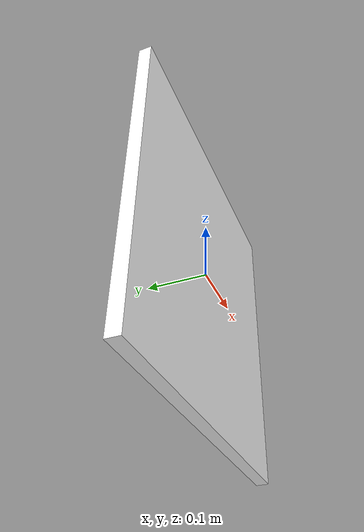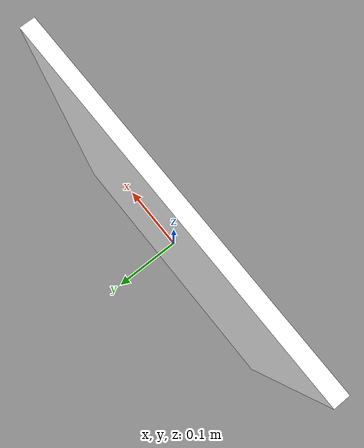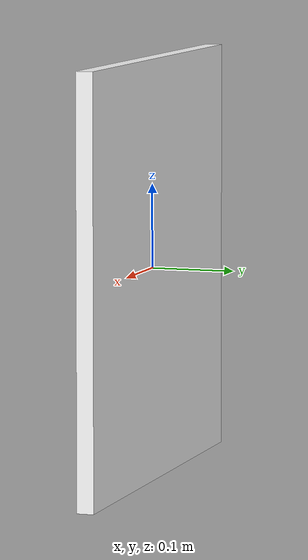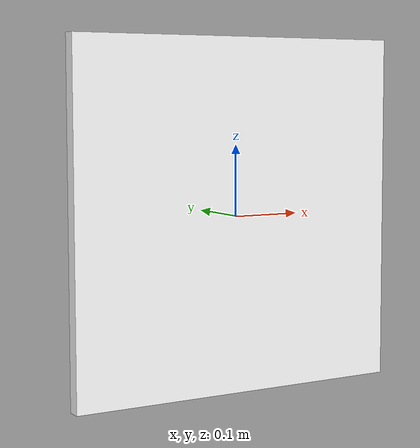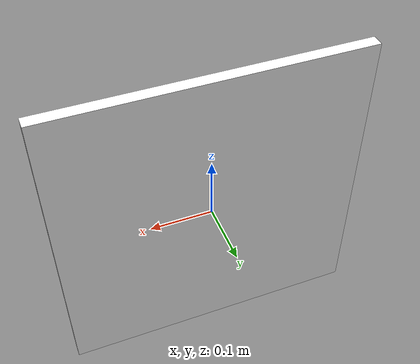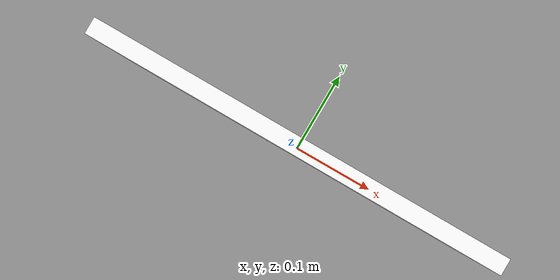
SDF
<?xml version="1.0"?>
<!-- GENERATED by sim/tools/gen_apriltag_models.py — do not edit by hand. -->
<sdf version="1.9">
  <model name="apriltag_36h11_0">
    <static>true</static>
    <link name="link">
      <visual name="tag">
        <geometry>
          <box>
            <size>0.5 0.02 0.5</size>
          </box>
        </geometry>
        <material>
          <diffuse>1 1 1 1</diffuse>
          <specular>0.1 0.1 0.1 1</specular>
          <pbr>
            <metal>
              <albedo_map>materials/textures/tag36_11_00000.png</albedo_map>
              <metalness>0.0</metalness>
              <roughness>1.0</roughness>
            </metal>
          </pbr>
        </material>
      </visual>
    </link>
  </model>
</sdf>
